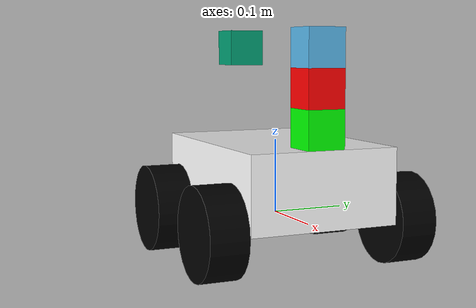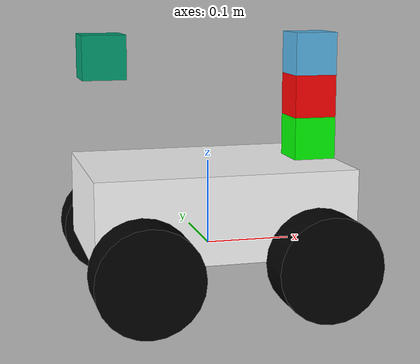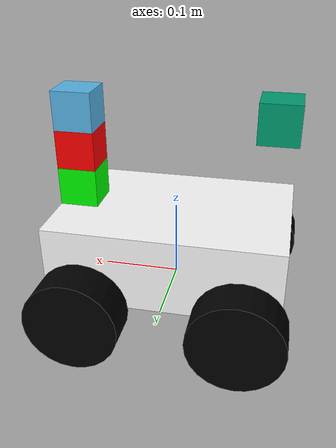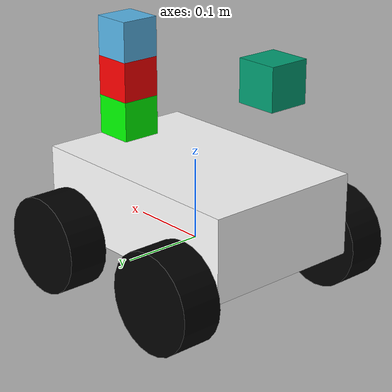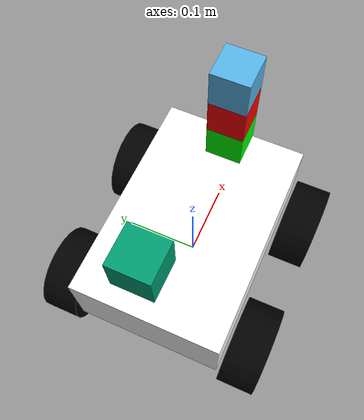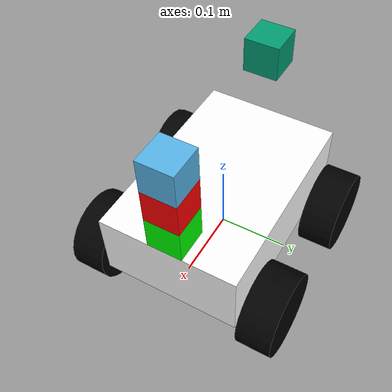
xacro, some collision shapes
<?xml version="1.0"?>

<robot name="robot" xmlns:xacro="http://www.ros.org/wiki/xacro">

	<xacro:property name="length_wheel" value="0.05" />
	<xacro:property name="radius_wheel" value="0.06" />
	<xacro:property name="camera_link" value="0.05" />
        <xacro:property name="PI" value="3.1415926"/>
	<xacro:macro name="default_inertial" params="mass">
               <inertial>
                       <mass value="${mass}" />
                       <inertia ixx="0.01" ixy="0.0"
                                ixz="0.0"
                                iyy="0.01" iyz="0.0"
                                izz="0.01" />
               </inertial>
	</xacro:macro>
    <link name="dummy">
    </link>
	<link name="base_footprint">
   		<visual>
			<geometry>
      				<box size="0.001 0.001 0.001"/>
     			</geometry>
			<origin rpy="0 0 0" xyz="0 0 0"/>
   		</visual>
		<xacro:default_inertial mass="0.0001"/>
 	</link>
   <joint name="dummy_joint" type="fixed">
     <parent link="dummy"/>
     <child link="base_footprint"/>
   </joint>

	<gazebo reference="base_footprint">
		<material>Gazebo/Green</material>
		<turnGravityOff>false</turnGravityOff>
	</gazebo>

	<joint name="base_footprint_joint" type="fixed">
		<origin xyz="0 0 0" />
		<parent link="base_footprint" />
		<child link="base_link" />
	</joint>

	<link name="base_link">
   		<visual>
			<geometry>
      				<box size="0.2 .3 .1"/>
     			</geometry>
			<origin rpy="0 0 ${PI/2}" xyz="0 0 0.05"/>
			<material name="white">　　　
				<color rgba="1 1 1 1"/>
			</material>
   		</visual>
		<collision>
			<geometry>
       				<box size="0.2 .3 0.1"/>
			</geometry>
		</collision>
                <xacro:default_inertial mass="8.2"/>
 	</link>

 	<link name="wheel_1">
   		<visual>
     			<geometry>
       				<cylinder length="${length_wheel}" radius="${radius_wheel}"/>
     			</geometry>
			<origin rpy="0 0 0" xyz="0 0 0"/>
   			<material name="black">
				<color rgba="0 0 0 1"/>
			</material>
		</visual>
		<collision>
			<geometry>
       				<cylinder length="${length_wheel}" radius="${radius_wheel}"/>
			</geometry>
		</collision>
		  <mu1>0.5</mu1>
		    <mu2>0.5</mu2>
		<xacro:default_inertial mass="0.5"/>
 	</link>

 	<link name="wheel_2">
   		<visual>
     			<geometry>
       				<cylinder length="${length_wheel}" radius="${radius_wheel}"/>
     			</geometry>
			<origin rpy="0 0 0" xyz="0 0 0"/>
   			<material name="black"/>
   		</visual>
		<collision>
			<geometry>
       				<cylinder length="${length_wheel}" radius="${radius_wheel}"/>
			</geometry>
		</collision>
		   <mu1>0.5</mu1>
		    <mu2>0.5</mu2>
		<xacro:default_inertial mass="0.5"/>

 	</link>

 	<link name="wheel_3">
   		<visual>
     			<geometry>
       				<cylinder length="${length_wheel}" radius="${radius_wheel}"/>
     			</geometry>

			<origin rpy="0 0 0" xyz="0 0 0"/>
   			<material name="black"/>
   		</visual>
		<collision>
			<geometry>
       				<cylinder length="${length_wheel}" radius="${radius_wheel}"/>
			</geometry>
		</collision>
		 <mu1>0.5</mu1>
		    <mu2>0.5</mu2>
		<xacro:default_inertial mass="0.5"/>
 	</link>

 	<link name="wheel_4">
   		<visual>
     			<geometry>
       				<cylinder length="${length_wheel}" radius="${radius_wheel}"/>
     			</geometry>
			<origin rpy="0 0 0" xyz="0 0 0" />
   			<material name="black"/>
   		</visual>
		<collision>
			<geometry>
       				<cylinder length="${length_wheel}" radius="${radius_wheel}"/>
			</geometry>
		</collision>
		   <mu1>0.5</mu1>
		    <mu2>0.5</mu2>
		<xacro:default_inertial mass="0.5"/>

 	</link>

 <joint name="base_to_wheel1" type="continuous">
   <parent link="base_link"/>
   <child link="wheel_1"/>
   <origin rpy="${-PI/2} 0 0" xyz="0.1 0.13 0"/>
   <axis xyz="0 0 1" />
 </joint>

 <joint name="base_to_wheel2" type="continuous">
   <axis xyz="0 0 1" />
   <anchor xyz="0 0 0" />
   <limit effort="100" velocity="100" />
   <parent link="base_link"/>
   <child link="wheel_2"/>
   <origin rpy="${-PI/2} 0 0" xyz="-0.1 0.13 0"/>
</joint>

 <joint name="base_to_wheel3" type="continuous">
   <parent link="base_link"/>
   <axis xyz="0 0 1" />
   <child link="wheel_3"/>
   <origin rpy="${-PI/2} 0 0" xyz="0.1 -0.13 0"/>
 </joint>

 <joint name="base_to_wheel4" type="continuous">
   <parent link="base_link"/>
   <axis xyz="0 0 1" />
   <child link="wheel_4"/>
   <origin rpy="${-PI/2} 0 0" xyz="-0.1 -0.13 0"/>
 </joint>

 <!-- IMU joint -->
  <joint name="imu_joint" type="fixed">
    <axis xyz="0 1 0" />
    <origin xyz="0.125 0 0.125" rpy="0 0 0"/>
    <parent link="base_link"/>
    <child link="imu_link"/>
  </joint>

  <!-- IMU -->
  <link name="imu_link">
    <collision>
      <origin xyz="0 0 0" rpy="0 0 0"/>
      <geometry>
  <box size="0.05 0.05 0.05"/>
      </geometry>
    </collision>

    <visual>
      <origin xyz="0 0 0" rpy="0 0 0"/>
      <geometry>
  <box size="0.05 0.05 0.05"/>
      </geometry>
      <material name="green">
  <color rgba="0 1 0 1"/>
      </material>
    </visual>

    <inertial>
      <mass value="1e-2" />
      <origin xyz="0 0 0" rpy="0 0 0"/>
      <inertia ixx="1e-6" ixy="0" ixz="0" iyy="1e-6" iyz="0" izz="1e-6" />
    </inertial>
  </link>

     <!-- IMU -->

  <!-- Camera joint -->
  <joint name="camera_joint" type="fixed">
    <axis xyz="0 1 0" />
    <origin xyz="0.125 0 0.175" rpy="0 0 0"/>
    <parent link="base_link"/>
    <child link="camera_link"/>
  </joint>

  <!-- Camera -->
  <link name="camera_link">
    <collision>
      <origin xyz="0 0 0" rpy="0 0 0"/>
      <geometry>
	<box size="0.05 0.05 0.05"/>
      </geometry>
    </collision>

    <visual>
      <origin xyz="0 0 0" rpy="0 0 0"/>
      <geometry>
	<box size="0.05 0.05 0.05"/>
      </geometry>
      <material name="red">
	<color rgba="1 0 0 1"/>
      </material>
    </visual>

    <inertial>
      <mass value="1e-2" />
      <origin xyz="0 0 0" rpy="0 0 0"/>
      <inertia ixx="1e-6" ixy="0" ixz="0" iyy="1e-6" iyz="0" izz="1e-6" />
    </inertial>
  </link>

     <!-- camera -->

<!-- 正面雷达 joint -->
<joint name="front_laser_joint" type="fixed">
    <origin xyz="0.125 0.0 0.225" rpy="0 0 0"/>
    <parent link="base_link"/>
    <axis xyz="0 1 0" />
    <child link="front_laser_frame"/>
</joint>

<!-- 正面雷达 link -->
<link name="front_laser_frame">
    <collision>
      <origin xyz="0 0 0" rpy="0 0 0"/>
      <geometry>
        <box size="0.05 0.05 0.05"/>
      </geometry>
    </collision>
    <visual>
      <origin xyz="0 0 0" rpy="0 0 0"/>
      <geometry>
        <mesh filename="package://simple_meca_car/meshes/hokuyo.dae"/>
      </geometry>
    </visual>
    <inertial>
      <mass value="1e-2" />
      <origin xyz="0 0 0" rpy="0 0 0"/>
      <inertia ixx="1e-6" ixy="0" ixz="0" iyy="1e-6" iyz="0" izz="1e-6" />
    </inertial>
</link>

<!-- 背面雷达 joint -->
<joint name="back_laser_joint" type="fixed">
    <origin xyz="-0.125 0.0 0.225" rpy="0 0 ${PI}"/>
    <parent link="base_link"/>
    <axis xyz="0 1 0" />
    <child link="back_laser_frame"/>
</joint>

<!-- 背面雷达 link -->
<link name="back_laser_frame">
    <collision>
      <origin xyz="0 0 0" rpy="0 0 0"/>
      <geometry>
        <box size="0.05 0.05 0.05"/>
      </geometry>
    </collision>
    <visual>
      <origin xyz="0 0 0" rpy="0 0 0"/>
      <geometry>
        <mesh filename="package://simple_meca_car/meshes/hokuyo.dae"/>
      </geometry>
    </visual>
    <inertial>
      <mass value="1e-2" />
      <origin xyz="0 0 0" rpy="0 0 0"/>
      <inertia ixx="1e-6" ixy="0" ixz="0" iyy="1e-6" iyz="0" izz="1e-6" />
    </inertial>
</link>

<!-- 正面雷达 gazebo 配置 -->
<gazebo reference="front_laser_frame">
    <sensor type="ray" name="front_laser_sensor">
      <pose>0 0 0 0 0 0</pose>
      <visualize>false</visualize>
      <update_rate>40</update_rate>
      <ray>
        <scan>
          <horizontal>
            <samples>720</samples>
            <resolution>1</resolution>
            <min_angle>-3.1415926</min_angle>
            <max_angle>3.1415926</max_angle>
          </horizontal>
        </scan>
        <range>
          <min>0.05</min>
          <max>30.0</max>
          <resolution>0.01</resolution>
        </range>
        <noise>
          <type>gaussian</type>
          <mean>0.0</mean>
          <stddev>0.01</stddev>
        </noise>
      </ray>
      <plugin name="gazebo_ros_front_laser_controller" filename="libgazebo_ros_laser.so">
        <topicName>scan_front</topicName>
        <frameName>front_laser_frame</frameName>
      </plugin>
    </sensor>
</gazebo>

<!-- 背面雷达 gazebo 配置 -->
<gazebo reference="back_laser_frame">
    <sensor type="ray" name="back_laser_sensor">
      <pose>0 0 0 0 0 0</pose>
      <visualize>false</visualize>
      <update_rate>40</update_rate>
      <ray>
        <scan>
          <horizontal>
            <samples>720</samples>
            <resolution>1</resolution>
            <min_angle>-3.1415926</min_angle>
            <max_angle>3.1415926</max_angle>
          </horizontal>
        </scan>
        <range>
          <min>0.05</min>
          <max>30.0</max>
          <resolution>0.01</resolution>
        </range>
        <noise>
          <type>gaussian</type>
          <mean>0.0</mean>
          <stddev>0.01</stddev>
        </noise>
      </ray>
      <plugin name="gazebo_ros_back_laser_controller" filename="libgazebo_ros_laser.so">
        <topicName>scan_back</topicName>
        <frameName>back_laser_frame</frameName>
      </plugin>
    </sensor>
</gazebo>

   <!-- hokuyo -->

<!-- gazebo插件设置相关 -->

   <gazebo reference="base_link">
    <material>Gazebo/Orange</material>
  </gazebo>

 <gazebo reference="wheel_1">
        <material>Gazebo/Red</material>
 </gazebo>

 <gazebo reference="wheel_2">
        <material>Gazebo/Black</material>
 </gazebo>

 <gazebo reference="wheel_3">
        <material>Gazebo/Red</material>
 </gazebo>

 <gazebo reference="wheel_4">
        <material>Gazebo/Black</material>
 </gazebo>

  <!-- ros_control plugin -->

  <!-- camera_link -->
  <gazebo reference="camera_link">
    <material>Gazebo/Red</material>
  </gazebo>

  <!-- hokuyo -->
  <gazebo reference="laser_frame">
    <sensor type="ray" name="head_hokuyo_sensor">
    <!-- GPU -->
      <pose>0 0 0 0 0 0</pose>
      <visualize>false</visualize>
      <update_rate>40</update_rate>
      <ray>
        <scan>
          <horizontal>
            <samples>720</samples>
            <resolution>1</resolution>
            <min_angle>-3.1415926</min_angle>
            <max_angle>3.1415926</max_angle>
          </horizontal>
        </scan>
        <range>
          <min>0.05</min>
          <max>30.0</max>
          <resolution>0.01</resolution>
        </range>
        <noise>
          <type>gaussian</type>
          <mean>0.0</mean>
          <stddev>0.01</stddev>
        </noise>
      </ray>
      <!-- GPU版本 -->
      <plugin name="gazebo_ros_head_hokuyo_controller" filename="libgazebo_ros_laser.so">
        <topicName>/scan</topicName>
        <frameName>laser_frame</frameName>
      </plugin>
    </sensor>
  </gazebo>

  <!-- camera -->
  <gazebo reference="camera_link">
    <sensor type="camera" name="camera1">
      <update_rate>30.0</update_rate>
      <camera name="head">
        <horizontal_fov>1.3962634</horizontal_fov>
        <image>
          <width>1920</width>
          <height>1080</height>
          <format>R8G8B8</format>
        </image>
        <clip>
          <near>0.02</near>
          <far>300</far>
        </clip>
        <noise>
          <type>gaussian</type>
          <!-- Noise is sampled independently per pixel on each frame.
               That pixel's noise value is added to each of its color
               channels, which at that point lie in the range [0,1]. -->
          <mean>0.0</mean>
          <stddev>0.007</stddev>
        </noise>
      </camera>
      <plugin name="camera_controller" filename="libgazebo_ros_camera.so">
        <alwaysOn>true</alwaysOn>
        <updateRate>0.0</updateRate>
        <cameraName>/</cameraName>
        <imageTopicName>cam</imageTopicName>
        <cameraInfoTopicName>camera_info</cameraInfoTopicName>
        <frameName>camera_link</frameName>
        <hackBaseline>0.07</hackBaseline>
        <distortionK1>0.0</distortionK1>
        <distortionK2>0.0</distortionK2>
        <distortionK3>0.0</distortionK3>
        <distortionT1>0.0</distortionT1>
        <distortionT2>0.0</distortionT2>
      </plugin>
    </sensor>
  </gazebo>

  <!-- Drive controller -->

  <!-- Drive controller -->
<gazebo>

<plugin name="mecanum_controller" filename="libgazebo_ros_planar_move.so">
 <alwaysOn>true</alwaysOn>
    <updateRate>100.0</updateRate>
    <robotNamespace>/</robotNamespace>
<commandTopic>cmd_vel</commandTopic>
<odometryTopic>odom</odometryTopic>
<odometryFrame>odom</odometryFrame>
<leftFrontJoint>base_to_wheel1</leftFrontJoint>
<rightFrontJoint>base_to_wheel3</rightFrontJoint>
<leftRearJoint>base_to_wheel2</leftRearJoint>
<rightRearJoint>base_to_wheel4</rightRearJoint>
<wheelSeparation>0.26</wheelSeparation>
<wheelDiameter>0.12</wheelDiameter>
<odometryRate>20.0</odometryRate>
<torque>2</torque>
<robotBaseFrame>base_footprint</robotBaseFrame>
<publishOdomTF>true</publishOdomTF>
<broadcastTF>true</broadcastTF>
</plugin>
</gazebo>

<!-- imu控制 -->

   <gazebo reference="imu_link">
        <material>Gazebo/Orange</material>
        <gravity>true</gravity>
        <sensor name="imu_sensor" type="imu">
            <always_on>true</always_on>
            <update_rate>100</update_rate>
            <visualize>true</visualize>
            <topic>__default_topic__</topic>
            <plugin filename="libgazebo_ros_imu_sensor.so" name="imu_plugin">
                <topicName>imu</topicName>
                <bodyName>imu_link</bodyName>
                <updateRateHZ>100.0</updateRateHZ>
                <gaussianNoise>0.0</gaussianNoise>
                <xyzOffset>0 0 0</xyzOffset>
                <rpyOffset>0 0 0</rpyOffset>
                <frameName>imu_link</frameName>
            </plugin>
            <pose>0 0 0 0 0 0</pose>
        </sensor>
    </gazebo>

<!-- gazebo插件设置相关结束 -->

</robot>
